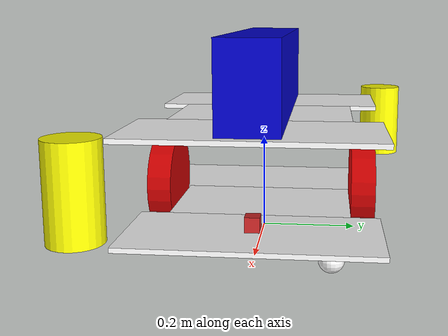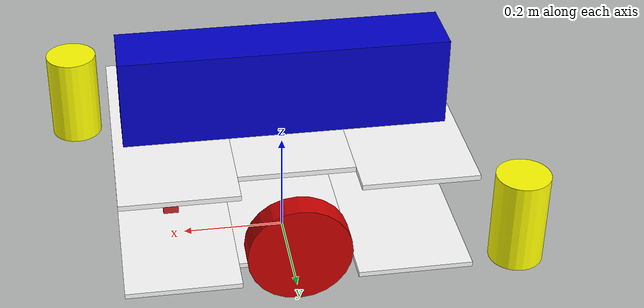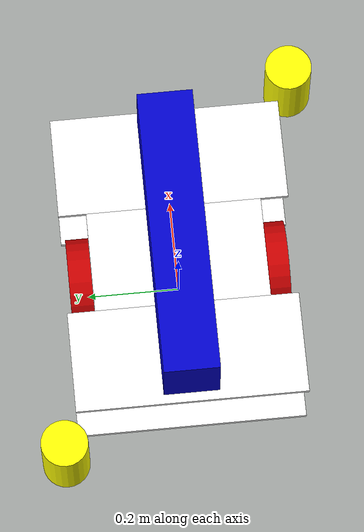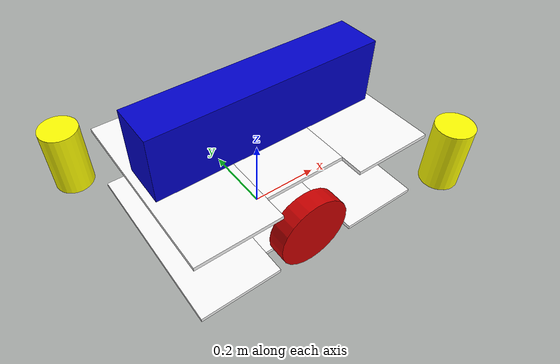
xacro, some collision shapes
<?xml version="1.0"?>
<robot name="air" xmlns:xacro="http://www.ros.org/wiki/xacro">

  <material name="blue">
    <color rgba="0 0 0.8 1"/>
  </material>

  <material name="red">
    <color rgba="0.8 0 0 1"/>
  </material>

  <material name="white">
    <color rgba="1 1 1 1"/>
  </material>

    <!-- Define some commonly used intertial properties  -->
  <xacro:macro name="box_inertia" params="m w h d">
    <inertial>
      <origin xyz="0 0 0" rpy="${pi/2} 0 ${pi/2}"/>
      <mass value="${m}"/>
      <inertia ixx="${(m/12) * (h*h + d*d)}" ixy="0.0" ixz="0.0" iyy="${(m/12) * (w*w + d*d)}" iyz="0.0" izz="${(m/12) * (w*w + h*h)}"/>
    </inertial>
  </xacro:macro>

  <xacro:macro name="cylinder_inertia" params="m r h">
    <inertial>
      <origin xyz="0 0 0" rpy="${pi/2} 0 0" />
      <mass value="${m}"/>
      <inertia ixx="${(m/12) * (3*r*r + h*h)}" ixy = "0" ixz = "0" iyy="${(m/12) * (3*r*r + h*h)}" iyz = "0" izz="${(m/2) * (r*r)}"/>
    </inertial>
  </xacro:macro>

  <xacro:macro name="sphere_inertia" params="m r">
    <inertial>
      <mass value="${m}"/>
      <inertia ixx="${(2/5) * m * (r*r)}" ixy="0.0" ixz="0.0" iyy="${(2/5) * m * (r*r)}" iyz="0.0" izz="${(2/5) * m * (r*r)}"/>
    </inertial>
  </xacro:macro>

  <!-- Define robot constants -->
  <xacro:property name="base_width" value="0.5"/>
  <xacro:property name="base_length" value="0.66"/>
  <xacro:property name="base_height" value="0.2"/>
  <xacro:property name="base_tick" value="0.01"/>
  <xacro:property name="base_panel_length" value="0.22"/>
  <xacro:property name="base_panel_width" value="0.38"/>

  <xacro:property name="battery_width" value="0.12"/>
  <xacro:property name="battery_length" value="0.62"/>
  <xacro:property name="battery_height" value="0.18"/>

  <xacro:property name="wheel_radius" value="0.10"/>
  <xacro:property name="wheel_width" value="0.05"/>
  <xacro:property name="wheel_ygap" value="-0.035"/>
  <xacro:property name="wheel_zoff" value="0.05"/>
  <xacro:property name="wheel_xoff" value="0.0"/>

  <xacro:property name="caster_xoff" value="0.27"/>
  <xacro:property name="caster_yoff" value="0.15"/>

<!-- Robot Base -->
  <link name="base_link">
    <visual>
      <origin xyz="0.0 0.0 ${wheel_zoff}" rpy="0 0 0"/>
      <geometry>
        <box size="${base_panel_length} ${base_panel_width} ${base_tick}"/>
      </geometry>
      <material name="white"/>
    </visual>

    <visual>
      <origin xyz="${(-1.0*base_panel_length)} 0.0 ${wheel_zoff}" rpy="0 0 0"/>
      <geometry>
        <box size="${base_panel_length} ${base_width} ${base_tick}"/>
      </geometry>
      <material name="white"/>
    </visual>

    <visual>
      <origin xyz="${(base_panel_length)} 0.0 ${wheel_zoff}" rpy="0 0 0"/>
      <geometry>
        <box size="${base_panel_length} ${base_width} ${base_tick}"/>
      </geometry>
      <material name="white"/>
    </visual>

    <visual>
      <origin xyz="0.0 0.0 ${wheel_zoff+base_height}" rpy="0 0 0"/>
      <geometry>
        <box size="${base_panel_length} ${base_panel_width} ${base_tick}"/>
      </geometry>
      <material name="white"/>
    </visual>

    <visual>
      <origin xyz="${(-1.0*base_panel_length)} 0.0 ${wheel_zoff+base_height}" rpy="0 0 0"/>
      <geometry>
        <box size="${base_panel_length} ${base_width} ${base_tick}"/>
      </geometry>
      <material name="white"/>
    </visual>

    <visual>
      <origin xyz="${(base_panel_length)} 0.0 ${wheel_zoff+base_height}" rpy="0 0 0"/>
      <geometry>
        <box size="${base_panel_length} ${base_width} ${base_tick}"/>
      </geometry>
      <material name="white"/>
    </visual>

    <collision>
      <origin xyz="0.0 0.0 ${(base_height/2+wheel_zoff)}" rpy="0 0 0"/>
      <geometry>
        <box size="${base_length} ${base_width} ${base_height}"/>
      </geometry>
    </collision>

    <xacro:box_inertia m="15" w="${base_width}" d="${base_length}" h="${base_height}"/>
  </link>

<!-- Robot battery -->
  <link name="battery_link">
    <visual>
      <origin xyz="0.0 0.0 0.0" rpy="0 0 0"/>
      <geometry>
        <box size="${battery_length} ${battery_width} ${battery_height}"/>
      </geometry>
      <material name="blue"/>

    </visual>
      <collision>
      <origin xyz="0.0 0.0 ${wheel_zoff+base_height+battery_height/2.0}" rpy="0 0 0"/>
      <geometry>
        <box size="${battery_length} ${battery_width} ${battery_height}"/>
      </geometry>
    </collision>

    <xacro:box_inertia m="16" w="${battery_width}" d="${battery_length}" h="${battery_height}"/>
  </link>

  <joint name="battery_joint" type="fixed">
    <parent link="base_link"/>
    <child link="battery_link"/>
    <origin xyz="0.0 0.0 ${wheel_zoff+base_height+battery_height/2.0}" rpy="0 0 0"/>
  </joint>

  <!-- Camera -->
<joint type="fixed" name="camera_joint">
    <origin xyz="0.225 0 0.075" rpy="0 0 0"/>
    <child link="camera_link"/>
    <parent link="base_link"/>
    <axis xyz="0 1 0" />
  </joint>

  <link name='camera_link'>
    <pose>0 0 0 0 0 0</pose>
    <inertial>
      <mass value="0.1"/>
      <origin xyz="0 0 0" rpy="0 0 0"/>
      <inertia
          ixx="1e-6" ixy="0" ixz="0"
          iyy="1e-6" iyz="0"
          izz="1e-6"
      />
    </inertial>

    <collision name='collision'>
      <origin xyz="0 0 0" rpy="0 0 0"/>
      <geometry>
        <box size=".03 .03 .03"/>
      </geometry>
    </collision>

    <visual name='camera_link_visual'>
      <origin xyz="0 0 0" rpy="0 0 0"/>
      <geometry>
        <box size=".03 .03 .03"/>
      </geometry>
    </visual>

  </link>

  <gazebo reference="camera_link">
    <material>Gazebo/Red</material>
  </gazebo>

  <joint type="fixed" name="camera_optical_joint">
    <origin xyz="0 0 0" rpy="-1.5707 0 -1.5707"/>
    <child link="camera_link_optical"/>
    <parent link="camera_link"/>
  </joint>

  <link name="camera_link_optical">
  </link>

  <!-- IMU -->
  <joint name="imu_joint" type="fixed">
    <origin xyz="0 0 0" rpy="0 0 0" />
    <parent link="base_link"/>
    <child link="imu_link" />
  </joint>

  <link name="imu_link">
  </link>
  <!-- Wheels -->
  <xacro:macro name="wheel" params="prefix x_reflect y_reflect">
    <link name="joint_link_${prefix}">
      <visual>
        <origin xyz="0 0 0" rpy="${pi/2} 0 0"/>
        <geometry>
          <cylinder radius="${wheel_radius}" length="${wheel_width}"/>
        </geometry>
        <material name="red"/>
      </visual>

      <collision>
        <origin xyz="0 0 0" rpy="${pi/2} 0 0"/>
        <geometry>
          <cylinder radius="${wheel_radius}" length="${wheel_width}"/>
        </geometry>
      </collision>

      <xacro:cylinder_inertia m="0.5" r="${wheel_radius}" h="${wheel_width}"/>
    </link>

    <joint name="joint_${prefix}" type="continuous">
      <parent link="base_link"/>
      <child link="joint_link_${prefix}"/>
      <origin xyz="${x_reflect*wheel_xoff} ${y_reflect*(base_width/2+wheel_ygap)} ${wheel_radius}" rpy="0 0 0"/>
      <axis xyz="0 1 0"/>
      <dynamics damping="10" friction="5"/>
    </joint>
  </xacro:macro>

  <xacro:wheel prefix="1" x_reflect="-1" y_reflect="1" />
  <xacro:wheel prefix="2" x_reflect="-1" y_reflect="-1" />

  <link name="front_left_caster">
    <visual>
      <geometry>
        <sphere radius="${(wheel_zoff/2)}"/>
      </geometry>
      <material name="white"/>
    </visual>

    <collision>
      <origin xyz="0 0 0" rpy="0 0 0"/>
      <geometry>
        <sphere radius="${(wheel_zoff/2)}"/>
      </geometry>
      <surface>
    <friction>
      <ode>
        <mu>0</mu>
        <mu2>0</mu2>
        <slip1>0.0000001</slip1>
        <slip2>0.0000001</slip2>
      </ode>
    </friction>
  </surface>
    </collision>

    <xacro:sphere_inertia m="0.005" r="${(base_height/2+wheel_zoff)}"/>
  </link>

  <joint name="front_left_caster_joint" type="fixed">
    <parent link="base_link"/>
    <child link="front_left_caster"/>
    <origin xyz="${caster_xoff} ${caster_yoff} ${(wheel_zoff/2)}" rpy="0 0 0"/>
  </joint>

  <link name="rear_right_caster">
    <visual>
      <geometry>
        <sphere radius="${(wheel_zoff/2)}"/>
      </geometry>
      <material name="white"/>
    </visual>

    <collision>
      <origin xyz="0 0 0" rpy="0 0 0"/>
      <geometry>
        <sphere radius="${(wheel_zoff/2)}"/>
      </geometry>
      <surface>
    <friction>
      <ode>
        <mu>0</mu>
        <mu2>0</mu2>
        <slip1>0.0000001</slip1>
        <slip2>0.0000001</slip2>
      </ode>
    </friction>
  </surface>
    </collision>

    <xacro:sphere_inertia m="0.005" r="${(base_height/2+wheel_zoff)}"/>
  </link>

  <joint name="rear_right_caster_joint" type="fixed">
    <parent link="base_link"/>
    <child link="rear_right_caster"/>
    <origin xyz="${-1.0*caster_xoff} ${-1.0*caster_yoff} ${(wheel_zoff/2)}" rpy="0 0 0"/>
  </joint>

  <!-- ****************************** LASER 0 *****************************    -->
  <link name="laser_link_0">
    <inertial>
      <origin xyz="0 0 0" rpy="0 0 0"/>
      <mass value="0.125"/>
      <inertia ixx="0.001" ixy="0" ixz="0" iyy="0.001" iyz="0" izz="0.001" />
    </inertial>
    <collision>
      <origin xyz="0 0 0" rpy="0 0 0"/>
      <geometry>
        <cylinder radius="0.0508" length="0.18"/>
      </geometry>
    </collision>
    <visual>
      <origin xyz="0 0 0" rpy="3.1415 0 -1.5708"/>
      <geometry>
<mesh filename="package://air_simulator/meshes/s300.obj" scale="0.001 0.001 0.001"/>
      </geometry>
      <material name="lidar_visual">
        <color rgba="1.0 1.0 0.0 1.0"/>
        <ambient>1.0 1.0 0.0 1.0</ambient>
        <diffuse>1.0 1.0 0.0 1.0</diffuse>
        <specular>0.5 0.5 0.0 1.0</specular>
        <emissive>0.2 0.2 0.0 1.0</emissive>
      </material>
    </visual>
  </link>

  <joint name="laser_joint_0" type="fixed">
    <parent link="base_link"/>
    <child link="laser_link_0"/>
    <origin xyz="0.4 -0.28 0.18" rpy="0 0 -0.7854"/>
  </joint>

    <!-- ****************************** LASER 1 *****************************    -->
  <link name="laser_link_1">
    <inertial>
      <origin xyz="0 0 0" rpy="0 0 0"/>
      <mass value="0.125"/>
      <inertia ixx="0.001" ixy="0" ixz="0" iyy="0.001" iyz="0" izz="0.001" />
    </inertial>
    <collision>
      <origin xyz="0 0 0" rpy="0 0 0"/>
      <geometry>
        <cylinder radius="0.0508" length="0.18"/>
      </geometry>
    </collision>
    <visual>
      <origin xyz="0 0 0" rpy="3.1415 0 -1.5708"/>
      <geometry>
<mesh filename="package://air_simulator/meshes/s300.obj" scale="0.001 0.001 0.001"/>
      </geometry>
      <material name="lidar_visual">
        <color rgba="1.0 1.0 0.0 1.0"/>
        <ambient>1.0 1.0 0.0 1.0</ambient>
        <diffuse>1.0 1.0 0.0 1.0</diffuse>
        <specular>0.5 0.5 0.0 1.0</specular>
        <emissive>0.2 0.2 0.0 1.0</emissive>
      </material>
    </visual>
  </link>

  <joint name="laser_joint_1" type="fixed">
    <parent link="base_link"/>
    <child link="laser_link_1"/>
    <origin xyz="-0.4 0.28 0.18" rpy="0 0 2.3562"/>
  </joint>

</robot>
